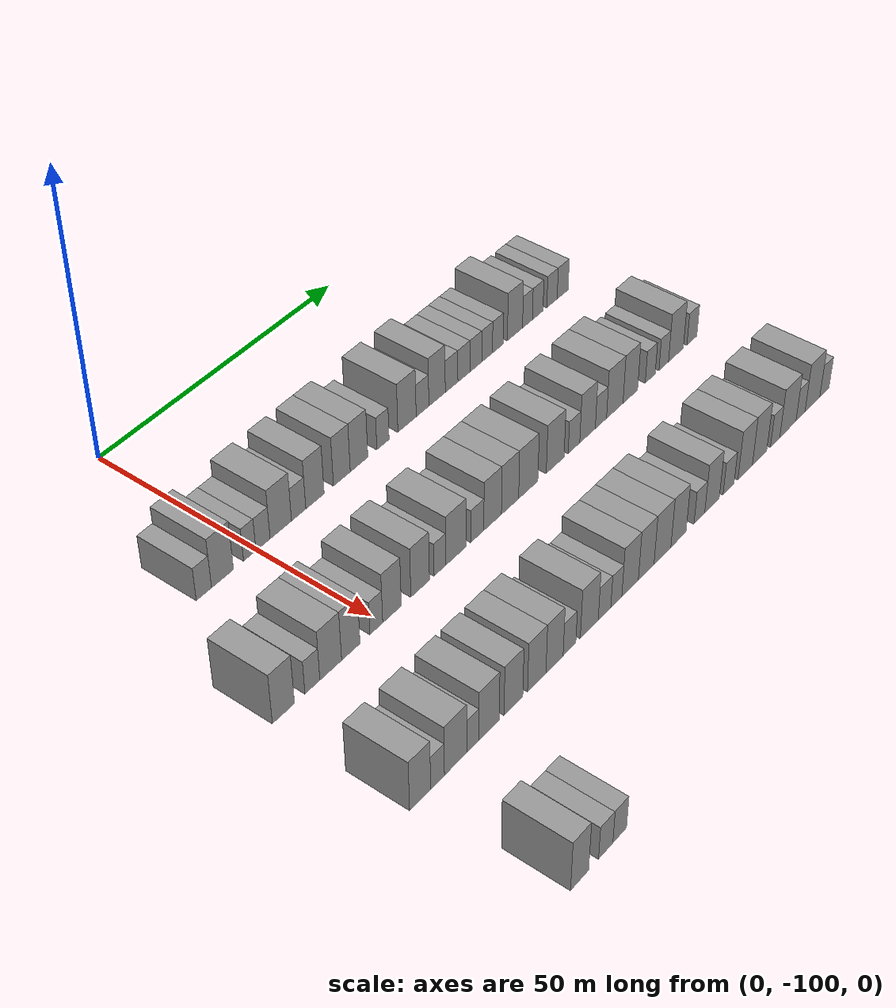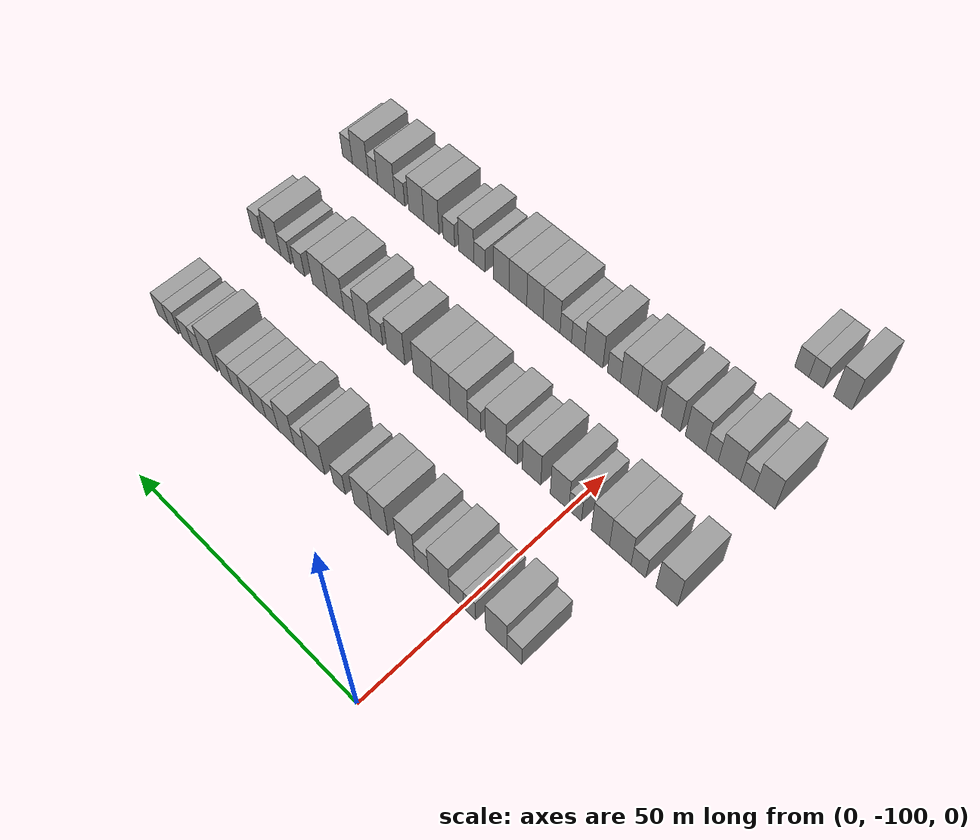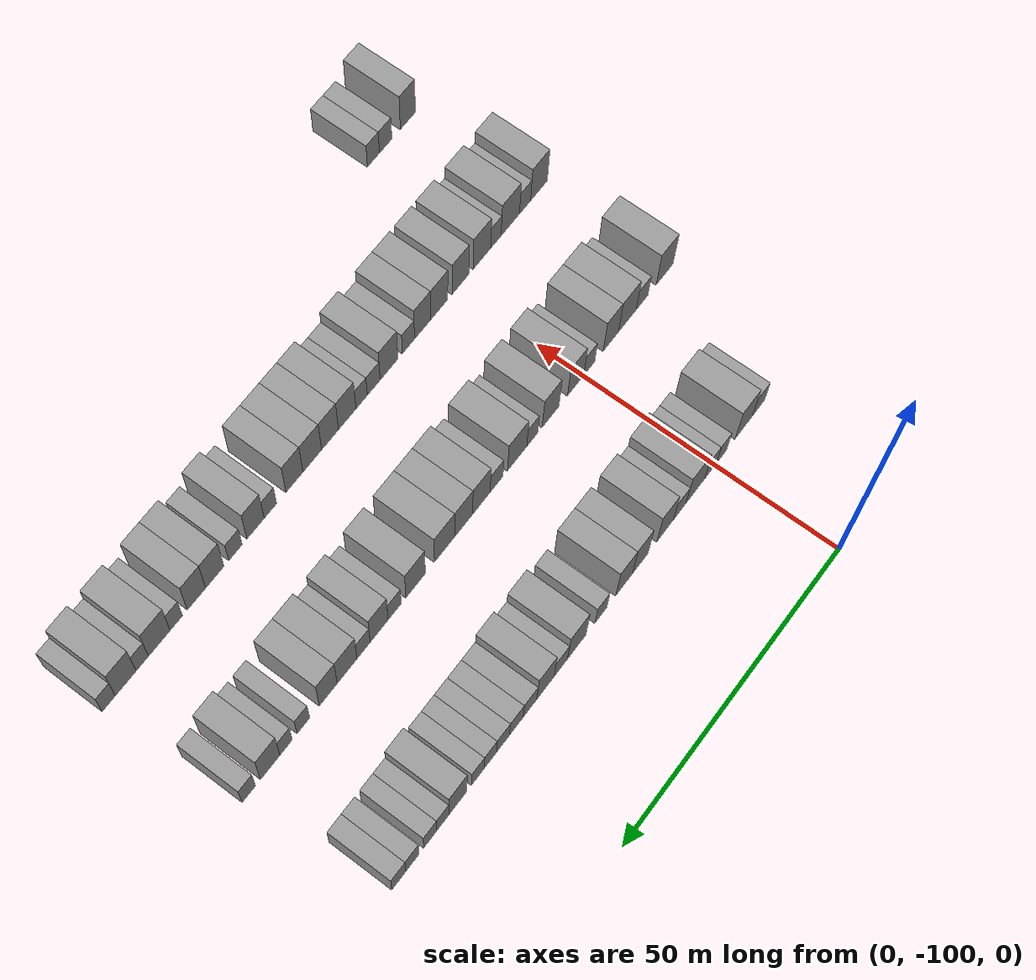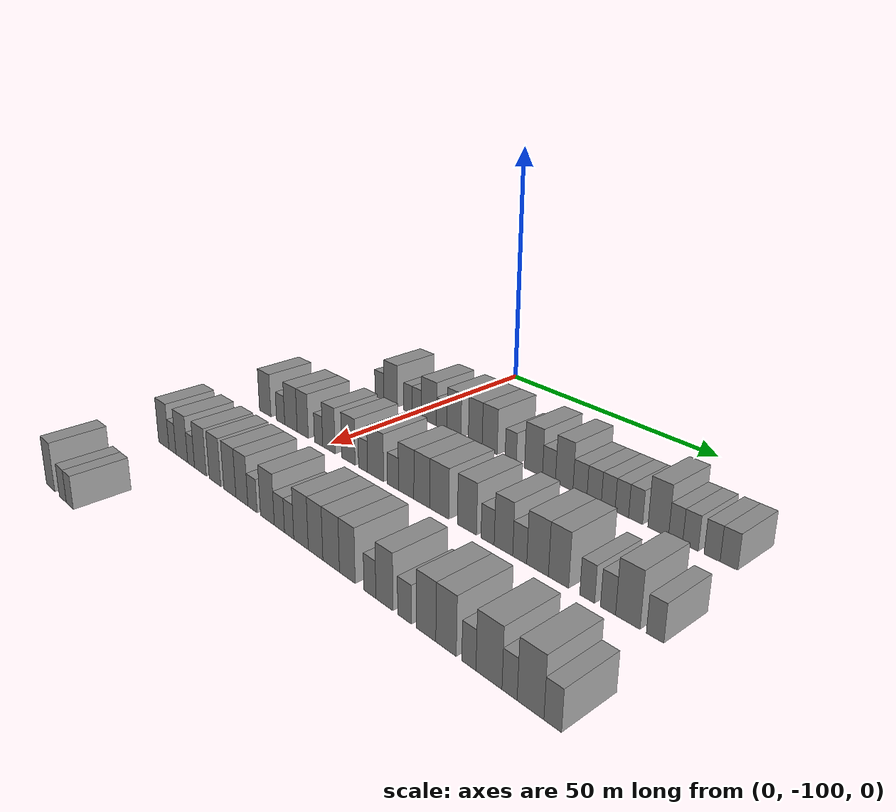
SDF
<sdf version="1.6">
 <world name="default">
  <model name="building_60">
   <static>1</static>
   <pose>25.0000 -110.4983 0 0.000000 0.000000 0.000000</pose>
   <link name="link">
    <pose>0 0 3.00 0 0 0</pose>
    <collision name="collision"><geometry><box><size>10.0000 2.9552 6.0000</size></box></geometry></collision>
    <visual name="visual">
     <cast_shadows>0</cast_shadows>
     <geometry><box><size>10.0000 2.9552 6.0000</size></box></geometry>
     <material>
      <script>
       <uri>model://grey_wall/materials/scripts</uri>
       <uri>model://grey_wall/materials/textures</uri>
       <name>vrc/grey_wall</name>
      </script>
     </material>
    </visual>
   </link>
  </model>
  <model name="building_61">
   <static>1</static>
   <pose>25.0000 -106.8751 0 0.000000 0.000000 0.000000</pose>
   <link name="link">
    <pose>0 0 4.50 0 0 0</pose>
    <collision name="collision"><geometry><box><size>10.0000 4.2911 9.0000</size></box></geometry></collision>
    <visual name="visual">
     <cast_shadows>0</cast_shadows>
     <geometry><box><size>10.0000 4.2911 9.0000</size></box></geometry>
     <material>
      <script>
       <uri>model://grey_wall/materials/scripts</uri>
       <uri>model://grey_wall/materials/textures</uri>
       <name>vrc/grey_wall</name>
      </script>
     </material>
    </visual>
   </link>
  </model>
  <model name="building_62">
   <static>1</static>
   <pose>25.0000 -101.4941 0 0.000000 0.000000 0.000000</pose>
   <link name="link">
    <pose>0 0 3.00 0 0 0</pose>
    <collision name="collision"><geometry><box><size>10.0000 2.4709 6.0000</size></box></geometry></collision>
    <visual name="visual">
     <cast_shadows>0</cast_shadows>
     <geometry><box><size>10.0000 2.4709 6.0000</size></box></geometry>
     <material>
      <script>
       <uri>model://grey_wall/materials/scripts</uri>
       <uri>model://grey_wall/materials/textures</uri>
       <name>vrc/grey_wall</name>
      </script>
     </material>
    </visual>
   </link>
  </model>
  <model name="building_63">
   <static>1</static>
   <pose>25.0000 -98.8210 0 0.000000 0.000000 0.000000</pose>
   <link name="link">
    <pose>0 0 3.00 0 0 0</pose>
    <collision name="collision"><geometry><box><size>10.0000 2.8753 6.0000</size></box></geometry></collision>
    <visual name="visual">
     <cast_shadows>0</cast_shadows>
     <geometry><box><size>10.0000 2.8753 6.0000</size></box></geometry>
     <material>
      <script>
       <uri>model://grey_wall/materials/scripts</uri>
       <uri>model://grey_wall/materials/textures</uri>
       <name>vrc/grey_wall</name>
      </script>
     </material>
    </visual>
   </link>
  </model>
  <model name="building_64">
   <static>1</static>
   <pose>25.0000 -95.1807 0 0.000000 0.000000 0.000000</pose>
   <link name="link">
    <pose>0 0 4.50 0 0 0</pose>
    <collision name="collision"><geometry><box><size>10.0000 4.4053 9.0000</size></box></geometry></collision>
    <visual name="visual">
     <cast_shadows>0</cast_shadows>
     <geometry><box><size>10.0000 4.4053 9.0000</size></box></geometry>
     <material>
      <script>
       <uri>model://grey_wall/materials/scripts</uri>
       <uri>model://grey_wall/materials/textures</uri>
       <name>vrc/grey_wall</name>
      </script>
     </material>
    </visual>
   </link>
  </model>
  <model name="building_65">
   <static>1</static>
   <pose>25.0000 -91.4868 0 0.000000 0.000000 0.000000</pose>
   <link name="link">
    <pose>0 0 3.00 0 0 0</pose>
    <collision name="collision"><geometry><box><size>10.0000 2.9825 6.0000</size></box></geometry></collision>
    <visual name="visual">
     <cast_shadows>0</cast_shadows>
     <geometry><box><size>10.0000 2.9825 6.0000</size></box></geometry>
     <material>
      <script>
       <uri>model://grey_wall/materials/scripts</uri>
       <uri>model://grey_wall/materials/textures</uri>
       <name>vrc/grey_wall</name>
      </script>
     </material>
    </visual>
   </link>
  </model>
  <model name="building_66">
   <static>1</static>
   <pose>25.0000 -88.0575 0 0.000000 0.000000 0.000000</pose>
   <link name="link">
    <pose>0 0 4.50 0 0 0</pose>
    <collision name="collision"><geometry><box><size>10.0000 3.8760 9.0000</size></box></geometry></collision>
    <visual name="visual">
     <cast_shadows>0</cast_shadows>
     <geometry><box><size>10.0000 3.8760 9.0000</size></box></geometry>
     <material>
      <script>
       <uri>model://grey_wall/materials/scripts</uri>
       <uri>model://grey_wall/materials/textures</uri>
       <name>vrc/grey_wall</name>
      </script>
     </material>
    </visual>
   </link>
  </model>
  <model name="building_67">
   <static>1</static>
   <pose>25.0000 -82.3033 0 0.000000 0.000000 0.000000</pose>
   <link name="link">
    <pose>0 0 4.50 0 0 0</pose>
    <collision name="collision"><geometry><box><size>10.0000 3.6325 9.0000</size></box></geometry></collision>
    <visual name="visual">
     <cast_shadows>0</cast_shadows>
     <geometry><box><size>10.0000 3.6325 9.0000</size></box></geometry>
     <material>
      <script>
       <uri>model://grey_wall/materials/scripts</uri>
       <uri>model://grey_wall/materials/textures</uri>
       <name>vrc/grey_wall</name>
      </script>
     </material>
    </visual>
   </link>
  </model>
  <model name="building_68">
   <static>1</static>
   <pose>25.0000 -78.5575 0 0.000000 0.000000 0.000000</pose>
   <link name="link">
    <pose>0 0 4.50 0 0 0</pose>
    <collision name="collision"><geometry><box><size>10.0000 3.8590 9.0000</size></box></geometry></collision>
    <visual name="visual">
     <cast_shadows>0</cast_shadows>
     <geometry><box><size>10.0000 3.8590 9.0000</size></box></geometry>
     <material>
      <script>
       <uri>model://grey_wall/materials/scripts</uri>
       <uri>model://grey_wall/materials/textures</uri>
       <name>vrc/grey_wall</name>
      </script>
     </material>
    </visual>
   </link>
  </model>
  <model name="building_69">
   <static>1</static>
   <pose>25.0000 -73.2572 0 0.000000 0.000000 0.000000</pose>
   <link name="link">
    <pose>0 0 3.00 0 0 0</pose>
    <collision name="collision"><geometry><box><size>10.0000 2.7417 6.0000</size></box></geometry></collision>
    <visual name="visual">
     <cast_shadows>0</cast_shadows>
     <geometry><box><size>10.0000 2.7417 6.0000</size></box></geometry>
     <material>
      <script>
       <uri>model://grey_wall/materials/scripts</uri>
       <uri>model://grey_wall/materials/textures</uri>
       <name>vrc/grey_wall</name>
      </script>
     </material>
    </visual>
   </link>
  </model>
  <model name="building_70">
   <static>1</static>
   <pose>25.0000 -67.7949 0 0.000000 0.000000 0.000000</pose>
   <link name="link">
    <pose>0 0 4.50 0 0 0</pose>
    <collision name="collision"><geometry><box><size>10.0000 4.1830 9.0000</size></box></geometry></collision>
    <visual name="visual">
     <cast_shadows>0</cast_shadows>
     <geometry><box><size>10.0000 4.1830 9.0000</size></box></geometry>
     <material>
      <script>
       <uri>model://grey_wall/materials/scripts</uri>
       <uri>model://grey_wall/materials/textures</uri>
       <name>vrc/grey_wall</name>
      </script>
     </material>
    </visual>
   </link>
  </model>
  <model name="building_71">
   <static>1</static>
   <pose>25.0000 -64.2286 0 0.000000 0.000000 0.000000</pose>
   <link name="link">
    <pose>0 0 3.00 0 0 0</pose>
    <collision name="collision"><geometry><box><size>10.0000 2.9495 6.0000</size></box></geometry></collision>
    <visual name="visual">
     <cast_shadows>0</cast_shadows>
     <geometry><box><size>10.0000 2.9495 6.0000</size></box></geometry>
     <material>
      <script>
       <uri>model://grey_wall/materials/scripts</uri>
       <uri>model://grey_wall/materials/textures</uri>
       <name>vrc/grey_wall</name>
      </script>
     </material>
    </visual>
   </link>
  </model>
  <model name="building_72">
   <static>1</static>
   <pose>25.0000 -60.8207 0 0.000000 0.000000 0.000000</pose>
   <link name="link">
    <pose>0 0 4.50 0 0 0</pose>
    <collision name="collision"><geometry><box><size>10.0000 3.8664 9.0000</size></box></geometry></collision>
    <visual name="visual">
     <cast_shadows>0</cast_shadows>
     <geometry><box><size>10.0000 3.8664 9.0000</size></box></geometry>
     <material>
      <script>
       <uri>model://grey_wall/materials/scripts</uri>
       <uri>model://grey_wall/materials/textures</uri>
       <name>vrc/grey_wall</name>
      </script>
     </material>
    </visual>
   </link>
  </model>
  <model name="building_73">
   <static>1</static>
   <pose>25.0000 -57.3881 0 0.000000 0.000000 0.000000</pose>
   <link name="link">
    <pose>0 0 3.00 0 0 0</pose>
    <collision name="collision"><geometry><box><size>10.0000 2.9990 6.0000</size></box></geometry></collision>
    <visual name="visual">
     <cast_shadows>0</cast_shadows>
     <geometry><box><size>10.0000 2.9990 6.0000</size></box></geometry>
     <material>
      <script>
       <uri>model://grey_wall/materials/scripts</uri>
       <uri>model://grey_wall/materials/textures</uri>
       <name>vrc/grey_wall</name>
      </script>
     </material>
    </visual>
   </link>
  </model>
  <model name="building_74">
   <static>1</static>
   <pose>25.0000 -54.4028 0 0.000000 0.000000 0.000000</pose>
   <link name="link">
    <pose>0 0 3.00 0 0 0</pose>
    <collision name="collision"><geometry><box><size>10.0000 2.9715 6.0000</size></box></geometry></collision>
    <visual name="visual">
     <cast_shadows>0</cast_shadows>
     <geometry><box><size>10.0000 2.9715 6.0000</size></box></geometry>
     <material>
      <script>
       <uri>model://grey_wall/materials/scripts</uri>
       <uri>model://grey_wall/materials/textures</uri>
       <name>vrc/grey_wall</name>
      </script>
     </material>
    </visual>
   </link>
  </model>
  <model name="building_75">
   <static>1</static>
   <pose>25.0000 -51.5189 0 0.000000 0.000000 0.000000</pose>
   <link name="link">
    <pose>0 0 3.00 0 0 0</pose>
    <collision name="collision"><geometry><box><size>10.0000 2.7965 6.0000</size></box></geometry></collision>
    <visual name="visual">
     <cast_shadows>0</cast_shadows>
     <geometry><box><size>10.0000 2.7965 6.0000</size></box></geometry>
     <material>
      <script>
       <uri>model://grey_wall/materials/scripts</uri>
       <uri>model://grey_wall/materials/textures</uri>
       <name>vrc/grey_wall</name>
      </script>
     </material>
    </visual>
   </link>
  </model>
  <model name="building_76">
   <static>1</static>
   <pose>25.0000 -48.7850 0 0.000000 0.000000 0.000000</pose>
   <link name="link">
    <pose>0 0 3.00 0 0 0</pose>
    <collision name="collision"><geometry><box><size>10.0000 2.6713 6.0000</size></box></geometry></collision>
    <visual name="visual">
     <cast_shadows>0</cast_shadows>
     <geometry><box><size>10.0000 2.6713 6.0000</size></box></geometry>
     <material>
      <script>
       <uri>model://grey_wall/materials/scripts</uri>
       <uri>model://grey_wall/materials/textures</uri>
       <name>vrc/grey_wall</name>
      </script>
     </material>
    </visual>
   </link>
  </model>
  <model name="building_77">
   <static>1</static>
   <pose>25.0000 -46.0974 0 0.000000 0.000000 0.000000</pose>
   <link name="link">
    <pose>0 0 3.00 0 0 0</pose>
    <collision name="collision"><geometry><box><size>10.0000 2.7039 6.0000</size></box></geometry></collision>
    <visual name="visual">
     <cast_shadows>0</cast_shadows>
     <geometry><box><size>10.0000 2.7039 6.0000</size></box></geometry>
     <material>
      <script>
       <uri>model://grey_wall/materials/scripts</uri>
       <uri>model://grey_wall/materials/textures</uri>
       <name>vrc/grey_wall</name>
      </script>
     </material>
    </visual>
   </link>
  </model>
  <model name="building_78">
   <static>1</static>
   <pose>25.0000 -41.8344 0 0.000000 0.000000 0.000000</pose>
   <link name="link">
    <pose>0 0 4.50 0 0 0</pose>
    <collision name="collision"><geometry><box><size>10.0000 3.8222 9.0000</size></box></geometry></collision>
    <visual name="visual">
     <cast_shadows>0</cast_shadows>
     <geometry><box><size>10.0000 3.8222 9.0000</size></box></geometry>
     <material>
      <script>
       <uri>model://grey_wall/materials/scripts</uri>
       <uri>model://grey_wall/materials/textures</uri>
       <name>vrc/grey_wall</name>
      </script>
     </material>
    </visual>
   </link>
  </model>
  <model name="building_79">
   <static>1</static>
   <pose>25.0000 -38.6605 0 0.000000 0.000000 0.000000</pose>
   <link name="link">
    <pose>0 0 3.00 0 0 0</pose>
    <collision name="collision"><geometry><box><size>10.0000 2.5257 6.0000</size></box></geometry></collision>
    <visual name="visual">
     <cast_shadows>0</cast_shadows>
     <geometry><box><size>10.0000 2.5257 6.0000</size></box></geometry>
     <material>
      <script>
       <uri>model://grey_wall/materials/scripts</uri>
       <uri>model://grey_wall/materials/textures</uri>
       <name>vrc/grey_wall</name>
      </script>
     </material>
    </visual>
   </link>
  </model>
  <model name="building_80">
   <static>1</static>
   <pose>25.0000 -36.0347 0 0.000000 0.000000 0.000000</pose>
   <link name="link">
    <pose>0 0 3.00 0 0 0</pose>
    <collision name="collision"><geometry><box><size>10.0000 2.7259 6.0000</size></box></geometry></collision>
    <visual name="visual">
     <cast_shadows>0</cast_shadows>
     <geometry><box><size>10.0000 2.7259 6.0000</size></box></geometry>
     <material>
      <script>
       <uri>model://grey_wall/materials/scripts</uri>
       <uri>model://grey_wall/materials/textures</uri>
       <name>vrc/grey_wall</name>
      </script>
     </material>
    </visual>
   </link>
  </model>
  <model name="building_81">
   <static>1</static>
   <pose>25.0000 -32.3212 0 0.000000 0.000000 0.000000</pose>
   <link name="link">
    <pose>0 0 3.00 0 0 0</pose>
    <collision name="collision"><geometry><box><size>10.0000 2.7010 6.0000</size></box></geometry></collision>
    <visual name="visual">
     <cast_shadows>0</cast_shadows>
     <geometry><box><size>10.0000 2.7010 6.0000</size></box></geometry>
     <material>
      <script>
       <uri>model://grey_wall/materials/scripts</uri>
       <uri>model://grey_wall/materials/textures</uri>
       <name>vrc/grey_wall</name>
      </script>
     </material>
    </visual>
   </link>
  </model>
  <model name="building_82">
   <static>1</static>
   <pose>25.0000 -29.5241 0 0.000000 0.000000 0.000000</pose>
   <link name="link">
    <pose>0 0 3.00 0 0 0</pose>
    <collision name="collision"><geometry><box><size>10.0000 2.8931 6.0000</size></box></geometry></collision>
    <visual name="visual">
     <cast_shadows>0</cast_shadows>
     <geometry><box><size>10.0000 2.8931 6.0000</size></box></geometry>
     <material>
      <script>
       <uri>model://grey_wall/materials/scripts</uri>
       <uri>model://grey_wall/materials/textures</uri>
       <name>vrc/grey_wall</name>
      </script>
     </material>
    </visual>
   </link>
  </model>
  <model name="building_249">
   <static>1</static>
   <pose>47.0000 -119.5810 0 0.000000 0.000000 0.000000</pose>
   <link name="link">
    <pose>0 0 4.50 0 0 0</pose>
    <collision name="collision"><geometry><box><size>10.0000 4.1758 9.0000</size></box></geometry></collision>
    <visual name="visual">
     <cast_shadows>0</cast_shadows>
     <geometry><box><size>10.0000 4.1758 9.0000</size></box></geometry>
     <material>
      <script>
       <uri>model://grey_wall/materials/scripts</uri>
       <uri>model://grey_wall/materials/textures</uri>
       <name>vrc/grey_wall</name>
      </script>
     </material>
    </visual>
   </link>
  </model>
  <model name="building_250">
   <static>1</static>
   <pose>47.0000 -114.0528 0 0.000000 0.000000 0.000000</pose>
   <link name="link">
    <pose>0 0 3.00 0 0 0</pose>
    <collision name="collision"><geometry><box><size>10.0000 2.8806 6.0000</size></box></geometry></collision>
    <visual name="visual">
     <cast_shadows>0</cast_shadows>
     <geometry><box><size>10.0000 2.8806 6.0000</size></box></geometry>
     <material>
      <script>
       <uri>model://grey_wall/materials/scripts</uri>
       <uri>model://grey_wall/materials/textures</uri>
       <name>vrc/grey_wall</name>
      </script>
     </material>
    </visual>
   </link>
  </model>
  <model name="building_251">
   <static>1</static>
   <pose>47.0000 -110.4800 0 0.000000 0.000000 0.000000</pose>
   <link name="link">
    <pose>0 0 4.50 0 0 0</pose>
    <collision name="collision"><geometry><box><size>10.0000 4.2651 9.0000</size></box></geometry></collision>
    <visual name="visual">
     <cast_shadows>0</cast_shadows>
     <geometry><box><size>10.0000 4.2651 9.0000</size></box></geometry>
     <material>
      <script>
       <uri>model://grey_wall/materials/scripts</uri>
       <uri>model://grey_wall/materials/textures</uri>
       <name>vrc/grey_wall</name>
      </script>
     </material>
    </visual>
   </link>
  </model>
  <model name="building_252">
   <static>1</static>
   <pose>47.0000 -106.5111 0 0.000000 0.000000 0.000000</pose>
   <link name="link">
    <pose>0 0 4.50 0 0 0</pose>
    <collision name="collision"><geometry><box><size>10.0000 3.6725 9.0000</size></box></geometry></collision>
    <visual name="visual">
     <cast_shadows>0</cast_shadows>
     <geometry><box><size>10.0000 3.6725 9.0000</size></box></geometry>
     <material>
      <script>
       <uri>model://grey_wall/materials/scripts</uri>
       <uri>model://grey_wall/materials/textures</uri>
       <name>vrc/grey_wall</name>
      </script>
     </material>
    </visual>
   </link>
  </model>
  <model name="building_253">
   <static>1</static>
   <pose>47.0000 -101.3673 0 0.000000 0.000000 0.000000</pose>
   <link name="link">
    <pose>0 0 3.00 0 0 0</pose>
    <collision name="collision"><geometry><box><size>10.0000 2.6151 6.0000</size></box></geometry></collision>
    <visual name="visual">
     <cast_shadows>0</cast_shadows>
     <geometry><box><size>10.0000 2.6151 6.0000</size></box></geometry>
     <material>
      <script>
       <uri>model://grey_wall/materials/scripts</uri>
       <uri>model://grey_wall/materials/textures</uri>
       <name>vrc/grey_wall</name>
      </script>
     </material>
    </visual>
   </link>
  </model>
  <model name="building_254">
   <static>1</static>
   <pose>47.0000 -98.1369 0 0.000000 0.000000 0.000000</pose>
   <link name="link">
    <pose>0 0 4.50 0 0 0</pose>
    <collision name="collision"><geometry><box><size>10.0000 3.8457 9.0000</size></box></geometry></collision>
    <visual name="visual">
     <cast_shadows>0</cast_shadows>
     <geometry><box><size>10.0000 3.8457 9.0000</size></box></geometry>
     <material>
      <script>
       <uri>model://grey_wall/materials/scripts</uri>
       <uri>model://grey_wall/materials/textures</uri>
       <name>vrc/grey_wall</name>
      </script>
     </material>
    </visual>
   </link>
  </model>
  <model name="building_255">
   <static>1</static>
   <pose>47.0000 -92.2464 0 0.000000 0.000000 0.000000</pose>
   <link name="link">
    <pose>0 0 4.50 0 0 0</pose>
    <collision name="collision"><geometry><box><size>10.0000 3.9354 9.0000</size></box></geometry></collision>
    <visual name="visual">
     <cast_shadows>0</cast_shadows>
     <geometry><box><size>10.0000 3.9354 9.0000</size></box></geometry>
     <material>
      <script>
       <uri>model://grey_wall/materials/scripts</uri>
       <uri>model://grey_wall/materials/textures</uri>
       <name>vrc/grey_wall</name>
      </script>
     </material>
    </visual>
   </link>
  </model>
  <model name="building_256">
   <static>1</static>
   <pose>47.0000 -88.0085 0 0.000000 0.000000 0.000000</pose>
   <link name="link">
    <pose>0 0 3.00 0 0 0</pose>
    <collision name="collision"><geometry><box><size>10.0000 2.5404 6.0000</size></box></geometry></collision>
    <visual name="visual">
     <cast_shadows>0</cast_shadows>
     <geometry><box><size>10.0000 2.5404 6.0000</size></box></geometry>
     <material>
      <script>
       <uri>model://grey_wall/materials/scripts</uri>
       <uri>model://grey_wall/materials/textures</uri>
       <name>vrc/grey_wall</name>
      </script>
     </material>
    </visual>
   </link>
  </model>
  <model name="building_257">
   <static>1</static>
   <pose>47.0000 -84.5177 0 0.000000 0.000000 0.000000</pose>
   <link name="link">
    <pose>0 0 4.50 0 0 0</pose>
    <collision name="collision"><geometry><box><size>10.0000 4.4411 9.0000</size></box></geometry></collision>
    <visual name="visual">
     <cast_shadows>0</cast_shadows>
     <geometry><box><size>10.0000 4.4411 9.0000</size></box></geometry>
     <material>
      <script>
       <uri>model://grey_wall/materials/scripts</uri>
       <uri>model://grey_wall/materials/textures</uri>
       <name>vrc/grey_wall</name>
      </script>
     </material>
    </visual>
   </link>
  </model>
  <model name="building_258">
   <static>1</static>
   <pose>47.0000 -79.8300 0 0.000000 0.000000 0.000000</pose>
   <link name="link">
    <pose>0 0 3.00 0 0 0</pose>
    <collision name="collision"><geometry><box><size>10.0000 2.9342 6.0000</size></box></geometry></collision>
    <visual name="visual">
     <cast_shadows>0</cast_shadows>
     <geometry><box><size>10.0000 2.9342 6.0000</size></box></geometry>
     <material>
      <script>
       <uri>model://grey_wall/materials/scripts</uri>
       <uri>model://grey_wall/materials/textures</uri>
       <name>vrc/grey_wall</name>
      </script>
     </material>
    </visual>
   </link>
  </model>
  <model name="building_259">
   <static>1</static>
   <pose>47.0000 -76.3767 0 0.000000 0.000000 0.000000</pose>
   <link name="link">
    <pose>0 0 4.50 0 0 0</pose>
    <collision name="collision"><geometry><box><size>10.0000 3.9725 9.0000</size></box></geometry></collision>
    <visual name="visual">
     <cast_shadows>0</cast_shadows>
     <geometry><box><size>10.0000 3.9725 9.0000</size></box></geometry>
     <material>
      <script>
       <uri>model://grey_wall/materials/scripts</uri>
       <uri>model://grey_wall/materials/textures</uri>
       <name>vrc/grey_wall</name>
      </script>
     </material>
    </visual>
   </link>
  </model>
  <model name="building_260">
   <static>1</static>
   <pose>47.0000 -72.4099 0 0.000000 0.000000 0.000000</pose>
   <link name="link">
    <pose>0 0 4.50 0 0 0</pose>
    <collision name="collision"><geometry><box><size>10.0000 3.9610 9.0000</size></box></geometry></collision>
    <visual name="visual">
     <cast_shadows>0</cast_shadows>
     <geometry><box><size>10.0000 3.9610 9.0000</size></box></geometry>
     <material>
      <script>
       <uri>model://grey_wall/materials/scripts</uri>
       <uri>model://grey_wall/materials/textures</uri>
       <name>vrc/grey_wall</name>
      </script>
     </material>
    </visual>
   </link>
  </model>
  <model name="building_261">
   <static>1</static>
   <pose>47.0000 -68.1826 0 0.000000 0.000000 0.000000</pose>
   <link name="link">
    <pose>0 0 4.50 0 0 0</pose>
    <collision name="collision"><geometry><box><size>10.0000 4.4937 9.0000</size></box></geometry></collision>
    <visual name="visual">
     <cast_shadows>0</cast_shadows>
     <geometry><box><size>10.0000 4.4937 9.0000</size></box></geometry>
     <material>
      <script>
       <uri>model://grey_wall/materials/scripts</uri>
       <uri>model://grey_wall/materials/textures</uri>
       <name>vrc/grey_wall</name>
      </script>
     </material>
    </visual>
   </link>
  </model>
  <model name="building_262">
   <static>1</static>
   <pose>47.0000 -61.8004 0 0.000000 0.000000 0.000000</pose>
   <link name="link">
    <pose>0 0 4.50 0 0 0</pose>
    <collision name="collision"><geometry><box><size>10.0000 4.2708 9.0000</size></box></geometry></collision>
    <visual name="visual">
     <cast_shadows>0</cast_shadows>
     <geometry><box><size>10.0000 4.2708 9.0000</size></box></geometry>
     <material>
      <script>
       <uri>model://grey_wall/materials/scripts</uri>
       <uri>model://grey_wall/materials/textures</uri>
       <name>vrc/grey_wall</name>
      </script>
     </material>
    </visual>
   </link>
  </model>
  <model name="building_263">
   <static>1</static>
   <pose>47.0000 -57.2560 0 0.000000 0.000000 0.000000</pose>
   <link name="link">
    <pose>0 0 3.00 0 0 0</pose>
    <collision name="collision"><geometry><box><size>10.0000 2.8179 6.0000</size></box></geometry></collision>
    <visual name="visual">
     <cast_shadows>0</cast_shadows>
     <geometry><box><size>10.0000 2.8179 6.0000</size></box></geometry>
     <material>
      <script>
       <uri>model://grey_wall/materials/scripts</uri>
       <uri>model://grey_wall/materials/textures</uri>
       <name>vrc/grey_wall</name>
      </script>
     </material>
    </visual>
   </link>
  </model>
  <model name="building_264">
   <static>1</static>
   <pose>47.0000 -53.9247 0 0.000000 0.000000 0.000000</pose>
   <link name="link">
    <pose>0 0 4.50 0 0 0</pose>
    <collision name="collision"><geometry><box><size>10.0000 3.8447 9.0000</size></box></geometry></collision>
    <visual name="visual">
     <cast_shadows>0</cast_shadows>
     <geometry><box><size>10.0000 3.8447 9.0000</size></box></geometry>
     <material>
      <script>
       <uri>model://grey_wall/materials/scripts</uri>
       <uri>model://grey_wall/materials/textures</uri>
       <name>vrc/grey_wall</name>
      </script>
     </material>
    </visual>
   </link>
  </model>
  <model name="building_265">
   <static>1</static>
   <pose>47.0000 -50.5936 0 0.000000 0.000000 0.000000</pose>
   <link name="link">
    <pose>0 0 3.00 0 0 0</pose>
    <collision name="collision"><geometry><box><size>10.0000 2.8174 6.0000</size></box></geometry></collision>
    <visual name="visual">
     <cast_shadows>0</cast_shadows>
     <geometry><box><size>10.0000 2.8174 6.0000</size></box></geometry>
     <material>
      <script>
       <uri>model://grey_wall/materials/scripts</uri>
       <uri>model://grey_wall/materials/textures</uri>
       <name>vrc/grey_wall</name>
      </script>
     </material>
    </visual>
   </link>
  </model>
  <model name="building_266">
   <static>1</static>
   <pose>47.0000 -47.0925 0 0.000000 0.000000 0.000000</pose>
   <link name="link">
    <pose>0 0 4.50 0 0 0</pose>
    <collision name="collision"><geometry><box><size>10.0000 4.1849 9.0000</size></box></geometry></collision>
    <visual name="visual">
     <cast_shadows>0</cast_shadows>
     <geometry><box><size>10.0000 4.1849 9.0000</size></box></geometry>
     <material>
      <script>
       <uri>model://grey_wall/materials/scripts</uri>
       <uri>model://grey_wall/materials/textures</uri>
       <name>vrc/grey_wall</name>
      </script>
     </material>
    </visual>
   </link>
  </model>
  <model name="building_267">
   <static>1</static>
   <pose>47.0000 -43.1196 0 0.000000 0.000000 0.000000</pose>
   <link name="link">
    <pose>0 0 4.50 0 0 0</pose>
    <collision name="collision"><geometry><box><size>10.0000 3.7610 9.0000</size></box></geometry></collision>
    <visual name="visual">
     <cast_shadows>0</cast_shadows>
     <geometry><box><size>10.0000 3.7610 9.0000</size></box></geometry>
     <material>
      <script>
       <uri>model://grey_wall/materials/scripts</uri>
       <uri>model://grey_wall/materials/textures</uri>
       <name>vrc/grey_wall</name>
      </script>
     </material>
    </visual>
   </link>
  </model>
  <model name="building_268">
   <static>1</static>
   <pose>47.0000 -37.9317 0 0.000000 0.000000 0.000000</pose>
   <link name="link">
    <pose>0 0 3.00 0 0 0</pose>
    <collision name="collision"><geometry><box><size>10.0000 2.6148 6.0000</size></box></geometry></collision>
    <visual name="visual">
     <cast_shadows>0</cast_shadows>
     <geometry><box><size>10.0000 2.6148 6.0000</size></box></geometry>
     <material>
      <script>
       <uri>model://grey_wall/materials/scripts</uri>
       <uri>model://grey_wall/materials/textures</uri>
       <name>vrc/grey_wall</name>
      </script>
     </material>
    </visual>
   </link>
  </model>
  <model name="building_269">
   <static>1</static>
   <pose>47.0000 -34.3535 0 0.000000 0.000000 0.000000</pose>
   <link name="link">
    <pose>0 0 3.00 0 0 0</pose>
    <collision name="collision"><geometry><box><size>10.0000 2.5415 6.0000</size></box></geometry></collision>
    <visual name="visual">
     <cast_shadows>0</cast_shadows>
     <geometry><box><size>10.0000 2.5415 6.0000</size></box></geometry>
     <material>
      <script>
       <uri>model://grey_wall/materials/scripts</uri>
       <uri>model://grey_wall/materials/textures</uri>
       <name>vrc/grey_wall</name>
      </script>
     </material>
    </visual>
   </link>
  </model>
  <model name="building_270">
   <static>1</static>
   <pose>47.0000 -31.0920 0 0.000000 0.000000 0.000000</pose>
   <link name="link">
    <pose>0 0 4.50 0 0 0</pose>
    <collision name="collision"><geometry><box><size>10.0000 3.9814 9.0000</size></box></geometry></collision>
    <visual name="visual">
     <cast_shadows>0</cast_shadows>
     <geometry><box><size>10.0000 3.9814 9.0000</size></box></geometry>
     <material>
      <script>
       <uri>model://grey_wall/materials/scripts</uri>
       <uri>model://grey_wall/materials/textures</uri>
       <name>vrc/grey_wall</name>
      </script>
     </material>
    </visual>
   </link>
  </model>
  <model name="building_271">
   <static>1</static>
   <pose>47.0000 -26.7412 0 0.000000 0.000000 0.000000</pose>
   <link name="link">
    <pose>0 0 3.00 0 0 0</pose>
    <collision name="collision"><geometry><box><size>10.0000 2.7202 6.0000</size></box></geometry></collision>
    <visual name="visual">
     <cast_shadows>0</cast_shadows>
     <geometry><box><size>10.0000 2.7202 6.0000</size></box></geometry>
     <material>
      <script>
       <uri>model://grey_wall/materials/scripts</uri>
       <uri>model://grey_wall/materials/textures</uri>
       <name>vrc/grey_wall</name>
      </script>
     </material>
    </visual>
   </link>
  </model>
  <model name="building_432">
   <static>1</static>
   <pose>69.0000 -119.7279 0 0.000000 0.000000 0.000000</pose>
   <link name="link">
    <pose>0 0 4.50 0 0 0</pose>
    <collision name="collision"><geometry><box><size>10.0000 4.0581 9.0000</size></box></geometry></collision>
    <visual name="visual">
     <cast_shadows>0</cast_shadows>
     <geometry><box><size>10.0000 4.0581 9.0000</size></box></geometry>
     <material>
      <script>
       <uri>model://grey_wall/materials/scripts</uri>
       <uri>model://grey_wall/materials/textures</uri>
       <name>vrc/grey_wall</name>
      </script>
     </material>
    </visual>
   </link>
  </model>
  <model name="building_433">
   <static>1</static>
   <pose>69.0000 -116.3575 0 0.000000 0.000000 0.000000</pose>
   <link name="link">
    <pose>0 0 3.00 0 0 0</pose>
    <collision name="collision"><geometry><box><size>10.0000 2.6828 6.0000</size></box></geometry></collision>
    <visual name="visual">
     <cast_shadows>0</cast_shadows>
     <geometry><box><size>10.0000 2.6828 6.0000</size></box></geometry>
     <material>
      <script>
       <uri>model://grey_wall/materials/scripts</uri>
       <uri>model://grey_wall/materials/textures</uri>
       <name>vrc/grey_wall</name>
      </script>
     </material>
    </visual>
   </link>
  </model>
  <model name="building_434">
   <static>1</static>
   <pose>69.0000 -112.8075 0 0.000000 0.000000 0.000000</pose>
   <link name="link">
    <pose>0 0 4.50 0 0 0</pose>
    <collision name="collision"><geometry><box><size>10.0000 4.4172 9.0000</size></box></geometry></collision>
    <visual name="visual">
     <cast_shadows>0</cast_shadows>
     <geometry><box><size>10.0000 4.4172 9.0000</size></box></geometry>
     <material>
      <script>
       <uri>model://grey_wall/materials/scripts</uri>
       <uri>model://grey_wall/materials/textures</uri>
       <name>vrc/grey_wall</name>
      </script>
     </material>
    </visual>
   </link>
  </model>
  <model name="building_435">
   <static>1</static>
   <pose>69.0000 -109.3632 0 0.000000 0.000000 0.000000</pose>
   <link name="link">
    <pose>0 0 3.00 0 0 0</pose>
    <collision name="collision"><geometry><box><size>10.0000 2.4714 6.0000</size></box></geometry></collision>
    <visual name="visual">
     <cast_shadows>0</cast_shadows>
     <geometry><box><size>10.0000 2.4714 6.0000</size></box></geometry>
     <material>
      <script>
       <uri>model://grey_wall/materials/scripts</uri>
       <uri>model://grey_wall/materials/textures</uri>
       <name>vrc/grey_wall</name>
      </script>
     </material>
    </visual>
   </link>
  </model>
  <model name="building_436">
   <static>1</static>
   <pose>69.0000 -106.0511 0 0.000000 0.000000 0.000000</pose>
   <link name="link">
    <pose>0 0 4.50 0 0 0</pose>
    <collision name="collision"><geometry><box><size>10.0000 4.1530 9.0000</size></box></geometry></collision>
    <visual name="visual">
     <cast_shadows>0</cast_shadows>
     <geometry><box><size>10.0000 4.1530 9.0000</size></box></geometry>
     <material>
      <script>
       <uri>model://grey_wall/materials/scripts</uri>
       <uri>model://grey_wall/materials/textures</uri>
       <name>vrc/grey_wall</name>
      </script>
     </material>
    </visual>
   </link>
  </model>
  <model name="building_437">
   <static>1</static>
   <pose>69.0000 -101.0158 0 0.000000 0.000000 0.000000</pose>
   <link name="link">
    <pose>0 0 4.50 0 0 0</pose>
    <collision name="collision"><geometry><box><size>10.0000 3.9175 9.0000</size></box></geometry></collision>
    <visual name="visual">
     <cast_shadows>0</cast_shadows>
     <geometry><box><size>10.0000 3.9175 9.0000</size></box></geometry>
     <material>
      <script>
       <uri>model://grey_wall/materials/scripts</uri>
       <uri>model://grey_wall/materials/textures</uri>
       <name>vrc/grey_wall</name>
      </script>
     </material>
    </visual>
   </link>
  </model>
  <model name="building_438">
   <static>1</static>
   <pose>69.0000 -96.0924 0 0.000000 0.000000 0.000000</pose>
   <link name="link">
    <pose>0 0 4.50 0 0 0</pose>
    <collision name="collision"><geometry><box><size>10.0000 3.9292 9.0000</size></box></geometry></collision>
    <visual name="visual">
     <cast_shadows>0</cast_shadows>
     <geometry><box><size>10.0000 3.9292 9.0000</size></box></geometry>
     <material>
      <script>
       <uri>model://grey_wall/materials/scripts</uri>
       <uri>model://grey_wall/materials/textures</uri>
       <name>vrc/grey_wall</name>
      </script>
     </material>
    </visual>
   </link>
  </model>
  <model name="building_439">
   <static>1</static>
   <pose>69.0000 -92.2589 0 0.000000 0.000000 0.000000</pose>
   <link name="link">
    <pose>0 0 4.50 0 0 0</pose>
    <collision name="collision"><geometry><box><size>10.0000 3.7379 9.0000</size></box></geometry></collision>
    <visual name="visual">
     <cast_shadows>0</cast_shadows>
     <geometry><box><size>10.0000 3.7379 9.0000</size></box></geometry>
     <material>
      <script>
       <uri>model://grey_wall/materials/scripts</uri>
       <uri>model://grey_wall/materials/textures</uri>
       <name>vrc/grey_wall</name>
      </script>
     </material>
    </visual>
   </link>
  </model>
  <model name="building_440">
   <static>1</static>
   <pose>69.0000 -88.9890 0 0.000000 0.000000 0.000000</pose>
   <link name="link">
    <pose>0 0 3.00 0 0 0</pose>
    <collision name="collision"><geometry><box><size>10.0000 2.8019 6.0000</size></box></geometry></collision>
    <visual name="visual">
     <cast_shadows>0</cast_shadows>
     <geometry><box><size>10.0000 2.8019 6.0000</size></box></geometry>
     <material>
      <script>
       <uri>model://grey_wall/materials/scripts</uri>
       <uri>model://grey_wall/materials/textures</uri>
       <name>vrc/grey_wall</name>
      </script>
     </material>
    </visual>
   </link>
  </model>
  <model name="building_441">
   <static>1</static>
   <pose>69.0000 -84.5797 0 0.000000 0.000000 0.000000</pose>
   <link name="link">
    <pose>0 0 4.50 0 0 0</pose>
    <collision name="collision"><geometry><box><size>10.0000 4.0167 9.0000</size></box></geometry></collision>
    <visual name="visual">
     <cast_shadows>0</cast_shadows>
     <geometry><box><size>10.0000 4.0167 9.0000</size></box></geometry>
     <material>
      <script>
       <uri>model://grey_wall/materials/scripts</uri>
       <uri>model://grey_wall/materials/textures</uri>
       <name>vrc/grey_wall</name>
      </script>
     </material>
    </visual>
   </link>
  </model>
  <model name="building_442">
   <static>1</static>
   <pose>69.0000 -81.1334 0 0.000000 0.000000 0.000000</pose>
   <link name="link">
    <pose>0 0 3.00 0 0 0</pose>
    <collision name="collision"><geometry><box><size>10.0000 2.8758 6.0000</size></box></geometry></collision>
    <visual name="visual">
     <cast_shadows>0</cast_shadows>
     <geometry><box><size>10.0000 2.8758 6.0000</size></box></geometry>
     <material>
      <script>
       <uri>model://grey_wall/materials/scripts</uri>
       <uri>model://grey_wall/materials/textures</uri>
       <name>vrc/grey_wall</name>
      </script>
     </material>
    </visual>
   </link>
  </model>
  <model name="building_443">
   <static>1</static>
   <pose>69.0000 -78.4243 0 0.000000 0.000000 0.000000</pose>
   <link name="link">
    <pose>0 0 3.00 0 0 0</pose>
    <collision name="collision"><geometry><box><size>10.0000 2.5425 6.0000</size></box></geometry></collision>
    <visual name="visual">
     <cast_shadows>0</cast_shadows>
     <geometry><box><size>10.0000 2.5425 6.0000</size></box></geometry>
     <material>
      <script>
       <uri>model://grey_wall/materials/scripts</uri>
       <uri>model://grey_wall/materials/textures</uri>
       <name>vrc/grey_wall</name>
      </script>
     </material>
    </visual>
   </link>
  </model>
  <model name="building_444">
   <static>1</static>
   <pose>69.0000 -75.2245 0 0.000000 0.000000 0.000000</pose>
   <link name="link">
    <pose>0 0 4.50 0 0 0</pose>
    <collision name="collision"><geometry><box><size>10.0000 3.8570 9.0000</size></box></geometry></collision>
    <visual name="visual">
     <cast_shadows>0</cast_shadows>
     <geometry><box><size>10.0000 3.8570 9.0000</size></box></geometry>
     <material>
      <script>
       <uri>model://grey_wall/materials/scripts</uri>
       <uri>model://grey_wall/materials/textures</uri>
       <name>vrc/grey_wall</name>
      </script>
     </material>
    </visual>
   </link>
  </model>
  <model name="building_445">
   <static>1</static>
   <pose>69.0000 -71.4307 0 0.000000 0.000000 0.000000</pose>
   <link name="link">
    <pose>0 0 4.50 0 0 0</pose>
    <collision name="collision"><geometry><box><size>10.0000 3.7307 9.0000</size></box></geometry></collision>
    <visual name="visual">
     <cast_shadows>0</cast_shadows>
     <geometry><box><size>10.0000 3.7307 9.0000</size></box></geometry>
     <material>
      <script>
       <uri>model://grey_wall/materials/scripts</uri>
       <uri>model://grey_wall/materials/textures</uri>
       <name>vrc/grey_wall</name>
      </script>
     </material>
    </visual>
   </link>
  </model>
  <model name="building_446">
   <static>1</static>
   <pose>69.0000 -67.5292 0 0.000000 0.000000 0.000000</pose>
   <link name="link">
    <pose>0 0 4.50 0 0 0</pose>
    <collision name="collision"><geometry><box><size>10.0000 4.0723 9.0000</size></box></geometry></collision>
    <visual name="visual">
     <cast_shadows>0</cast_shadows>
     <geometry><box><size>10.0000 4.0723 9.0000</size></box></geometry>
     <material>
      <script>
       <uri>model://grey_wall/materials/scripts</uri>
       <uri>model://grey_wall/materials/textures</uri>
       <name>vrc/grey_wall</name>
      </script>
     </material>
    </visual>
   </link>
  </model>
  <model name="building_447">
   <static>1</static>
   <pose>69.0000 -63.6410 0 0.000000 0.000000 0.000000</pose>
   <link name="link">
    <pose>0 0 4.50 0 0 0</pose>
    <collision name="collision"><geometry><box><size>10.0000 3.7041 9.0000</size></box></geometry></collision>
    <visual name="visual">
     <cast_shadows>0</cast_shadows>
     <geometry><box><size>10.0000 3.7041 9.0000</size></box></geometry>
     <material>
      <script>
       <uri>model://grey_wall/materials/scripts</uri>
       <uri>model://grey_wall/materials/textures</uri>
       <name>vrc/grey_wall</name>
      </script>
     </material>
    </visual>
   </link>
  </model>
  <model name="building_448">
   <static>1</static>
   <pose>69.0000 -58.4604 0 0.000000 0.000000 0.000000</pose>
   <link name="link">
    <pose>0 0 3.00 0 0 0</pose>
    <collision name="collision"><geometry><box><size>10.0000 2.6571 6.0000</size></box></geometry></collision>
    <visual name="visual">
     <cast_shadows>0</cast_shadows>
     <geometry><box><size>10.0000 2.6571 6.0000</size></box></geometry>
     <material>
      <script>
       <uri>model://grey_wall/materials/scripts</uri>
       <uri>model://grey_wall/materials/textures</uri>
       <name>vrc/grey_wall</name>
      </script>
     </material>
    </visual>
   </link>
  </model>
  <model name="building_449">
   <static>1</static>
   <pose>69.0000 -55.2918 0 0.000000 0.000000 0.000000</pose>
   <link name="link">
    <pose>0 0 4.50 0 0 0</pose>
    <collision name="collision"><geometry><box><size>10.0000 3.6801 9.0000</size></box></geometry></collision>
    <visual name="visual">
     <cast_shadows>0</cast_shadows>
     <geometry><box><size>10.0000 3.6801 9.0000</size></box></geometry>
     <material>
      <script>
       <uri>model://grey_wall/materials/scripts</uri>
       <uri>model://grey_wall/materials/textures</uri>
       <name>vrc/grey_wall</name>
      </script>
     </material>
    </visual>
   </link>
  </model>
  <model name="building_450">
   <static>1</static>
   <pose>69.0000 -51.0326 0 0.000000 0.000000 0.000000</pose>
   <link name="link">
    <pose>0 0 3.00 0 0 0</pose>
    <collision name="collision"><geometry><box><size>10.0000 2.8382 6.0000</size></box></geometry></collision>
    <visual name="visual">
     <cast_shadows>0</cast_shadows>
     <geometry><box><size>10.0000 2.8382 6.0000</size></box></geometry>
     <material>
      <script>
       <uri>model://grey_wall/materials/scripts</uri>
       <uri>model://grey_wall/materials/textures</uri>
       <name>vrc/grey_wall</name>
      </script>
     </material>
    </visual>
   </link>
  </model>
  <model name="building_451">
   <static>1</static>
   <pose>69.0000 -46.7126 0 0.000000 0.000000 0.000000</pose>
   <link name="link">
    <pose>0 0 4.50 0 0 0</pose>
    <collision name="collision"><geometry><box><size>10.0000 3.8019 9.0000</size></box></geometry></collision>
    <visual name="visual">
     <cast_shadows>0</cast_shadows>
     <geometry><box><size>10.0000 3.8019 9.0000</size></box></geometry>
     <material>
      <script>
       <uri>model://grey_wall/materials/scripts</uri>
       <uri>model://grey_wall/materials/textures</uri>
       <name>vrc/grey_wall</name>
      </script>
     </material>
    </visual>
   </link>
  </model>
  <model name="building_452">
   <static>1</static>
   <pose>69.0000 -42.8964 0 0.000000 0.000000 0.000000</pose>
   <link name="link">
    <pose>0 0 4.50 0 0 0</pose>
    <collision name="collision"><geometry><box><size>10.0000 3.8305 9.0000</size></box></geometry></collision>
    <visual name="visual">
     <cast_shadows>0</cast_shadows>
     <geometry><box><size>10.0000 3.8305 9.0000</size></box></geometry>
     <material>
      <script>
       <uri>model://grey_wall/materials/scripts</uri>
       <uri>model://grey_wall/materials/textures</uri>
       <name>vrc/grey_wall</name>
      </script>
     </material>
    </visual>
   </link>
  </model>
  <model name="building_453">
   <static>1</static>
   <pose>69.0000 -38.7197 0 0.000000 0.000000 0.000000</pose>
   <link name="link">
    <pose>0 0 3.00 0 0 0</pose>
    <collision name="collision"><geometry><box><size>10.0000 2.5229 6.0000</size></box></geometry></collision>
    <visual name="visual">
     <cast_shadows>0</cast_shadows>
     <geometry><box><size>10.0000 2.5229 6.0000</size></box></geometry>
     <material>
      <script>
       <uri>model://grey_wall/materials/scripts</uri>
       <uri>model://grey_wall/materials/textures</uri>
       <name>vrc/grey_wall</name>
      </script>
     </material>
    </visual>
   </link>
  </model>
  <model name="building_454">
   <static>1</static>
   <pose>69.0000 -35.2367 0 0.000000 0.000000 0.000000</pose>
   <link name="link">
    <pose>0 0 4.50 0 0 0</pose>
    <collision name="collision"><geometry><box><size>10.0000 4.4431 9.0000</size></box></geometry></collision>
    <visual name="visual">
     <cast_shadows>0</cast_shadows>
     <geometry><box><size>10.0000 4.4431 9.0000</size></box></geometry>
     <material>
      <script>
       <uri>model://grey_wall/materials/scripts</uri>
       <uri>model://grey_wall/materials/textures</uri>
       <name>vrc/grey_wall</name>
      </script>
     </material>
    </visual>
   </link>
  </model>
  <model name="building_455">
   <static>1</static>
   <pose>69.0000 -31.7747 0 0.000000 0.000000 0.000000</pose>
   <link name="link">
    <pose>0 0 3.00 0 0 0</pose>
    <collision name="collision"><geometry><box><size>10.0000 2.4809 6.0000</size></box></geometry></collision>
    <visual name="visual">
     <cast_shadows>0</cast_shadows>
     <geometry><box><size>10.0000 2.4809 6.0000</size></box></geometry>
     <material>
      <script>
       <uri>model://grey_wall/materials/scripts</uri>
       <uri>model://grey_wall/materials/textures</uri>
       <name>vrc/grey_wall</name>
      </script>
     </material>
    </visual>
   </link>
  </model>
  <model name="building_456">
   <static>1</static>
   <pose>69.0000 -28.4365 0 0.000000 0.000000 0.000000</pose>
   <link name="link">
    <pose>0 0 4.50 0 0 0</pose>
    <collision name="collision"><geometry><box><size>10.0000 4.1955 9.0000</size></box></geometry></collision>
    <visual name="visual">
     <cast_shadows>0</cast_shadows>
     <geometry><box><size>10.0000 4.1955 9.0000</size></box></geometry>
     <material>
      <script>
       <uri>model://grey_wall/materials/scripts</uri>
       <uri>model://grey_wall/materials/textures</uri>
       <name>vrc/grey_wall</name>
      </script>
     </material>
    </visual>
   </link>
  </model>
  <model name="building_457">
   <static>1</static>
   <pose>69.0000 -25.0160 0 0.000000 0.000000 0.000000</pose>
   <link name="link">
    <pose>0 0 3.00 0 0 0</pose>
    <collision name="collision"><geometry><box><size>10.0000 2.6454 6.0000</size></box></geometry></collision>
    <visual name="visual">
     <cast_shadows>0</cast_shadows>
     <geometry><box><size>10.0000 2.6454 6.0000</size></box></geometry>
     <material>
      <script>
       <uri>model://grey_wall/materials/scripts</uri>
       <uri>model://grey_wall/materials/textures</uri>
       <name>vrc/grey_wall</name>
      </script>
     </material>
    </visual>
   </link>
  </model>
  <model name="building_618">
   <static>1</static>
   <pose>91.0000 -117.5998 0 0.000000 0.000000 0.000000</pose>
   <link name="link">
    <pose>0 0 4.50 0 0 0</pose>
    <collision name="collision"><geometry><box><size>10.0000 3.6157 9.0000</size></box></geometry></collision>
    <visual name="visual">
     <cast_shadows>0</cast_shadows>
     <geometry><box><size>10.0000 3.6157 9.0000</size></box></geometry>
     <material>
      <script>
       <uri>model://grey_wall/materials/scripts</uri>
       <uri>model://grey_wall/materials/textures</uri>
       <name>vrc/grey_wall</name>
      </script>
     </material>
    </visual>
   </link>
  </model>
  <model name="building_619">
   <static>1</static>
   <pose>91.0000 -112.3246 0 0.000000 0.000000 0.000000</pose>
   <link name="link">
    <pose>0 0 3.00 0 0 0</pose>
    <collision name="collision"><geometry><box><size>10.0000 2.9347 6.0000</size></box></geometry></collision>
    <visual name="visual">
     <cast_shadows>0</cast_shadows>
     <geometry><box><size>10.0000 2.9347 6.0000</size></box></geometry>
     <material>
      <script>
       <uri>model://grey_wall/materials/scripts</uri>
       <uri>model://grey_wall/materials/textures</uri>
       <name>vrc/grey_wall</name>
      </script>
     </material>
    </visual>
   </link>
  </model>
  <model name="building_620">
   <static>1</static>
   <pose>91.0000 -109.4368 0 0.000000 0.000000 0.000000</pose>
   <link name="link">
    <pose>0 0 3.00 0 0 0</pose>
    <collision name="collision"><geometry><box><size>10.0000 2.8411 6.0000</size></box></geometry></collision>
    <visual name="visual">
     <cast_shadows>0</cast_shadows>
     <geometry><box><size>10.0000 2.8411 6.0000</size></box></geometry>
     <material>
      <script>
       <uri>model://grey_wall/materials/scripts</uri>
       <uri>model://grey_wall/materials/textures</uri>
       <name>vrc/grey_wall</name>
      </script>
     </material>
    </visual>
   </link>
  </model>
 </world>
</sdf>
